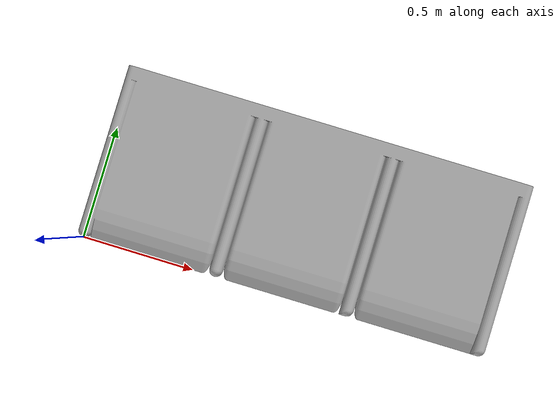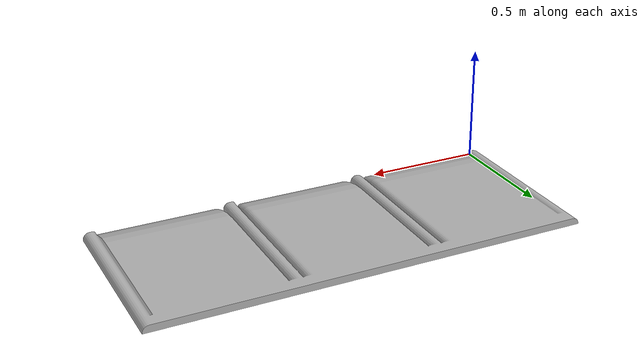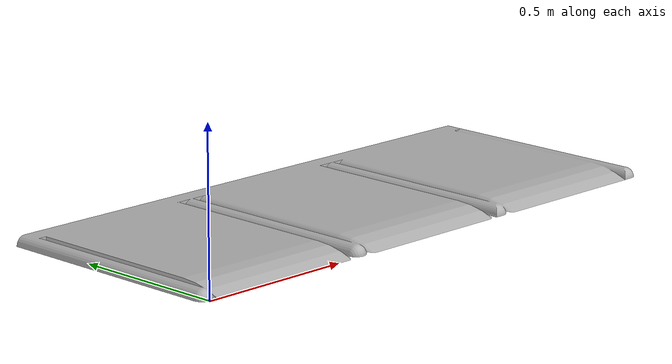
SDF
<?xml version="1.0" ?>
<sdf version="1.6">
  <model name="Parking_Lot">
    <static>true</static>
    <link name="link">
      <collision name="collision">
        <geometry>
          <mesh>
            <scale>0.3 0.3 0.3</scale>
            <uri>model://Parking_Lot/meshes/Parking_Lot.obj</uri>
          </mesh>
        </geometry>
      </collision>
      <visual name="visual">
        <geometry>
          <mesh>
            <scale>0.3 0.3 0.3</scale>
            <uri>model://Parking_Lot/meshes/Parking_Lot.obj</uri>
          </mesh>
        </geometry>
      </visual>
    </link>
  </model>
</sdf>
